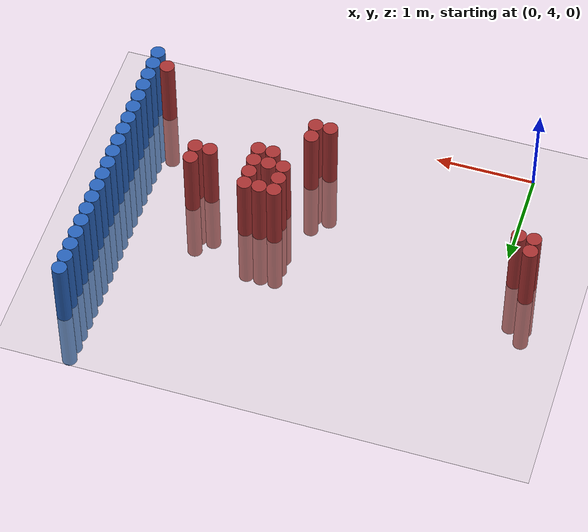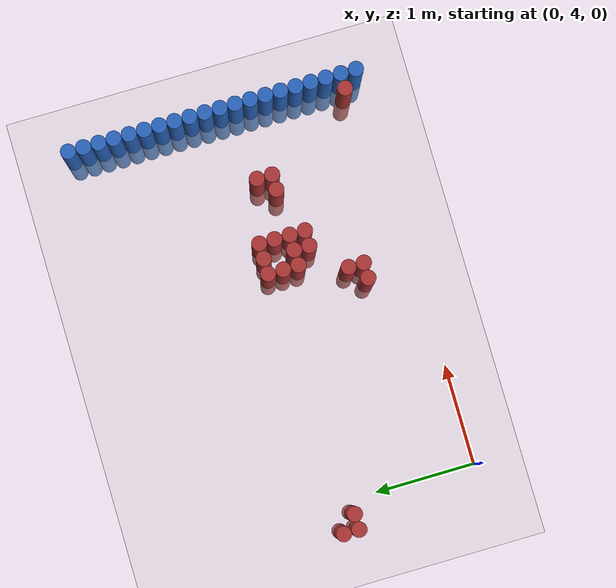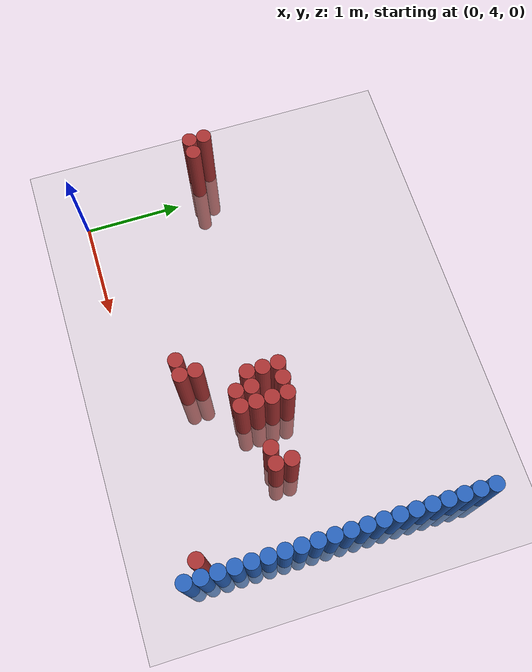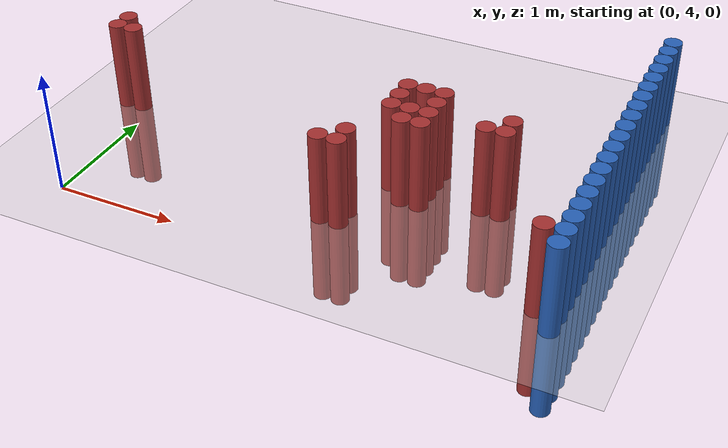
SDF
<sdf version="1.6">
 <world name="default">
  <model name="ground_plane">
   <static>1</static>
   <link name="link">
    <collision name="collision">
     <geometry><plane><normal>0 0 1</normal><size>100 100</size></plane></geometry>
     <surface><friction><ode><mu>100</mu><mu2>50</mu2></ode></friction></surface>
    </collision>
    <visual name="visual">
     <cast_shadows>0</cast_shadows>
     <geometry><plane><normal>0 0 1</normal><size>100 100</size></plane></geometry>
     <material>
      <script><uri>file://media/materials/scripts/gazebo.material</uri><name>Gazebo/Grey</name></script>
     </material>
    </visual>
   </link>
  </model>
  <model name="unit_cylinder_168">
   <static>1</static>
   <pose>3.925000 4.075000 0.000000 0.000000 0.000000 0.000000</pose>
   <link name="link">
    <inertial>
     <mass>1</mass>
     <inertia><ixx>0.145833</ixx><ixy>0</ixy><ixz>0</ixz><iyy>0.145833</iyy><iyz>0</iyz><izz>0.125</izz></inertia>
    </inertial>
    <collision name="collision">
     <geometry><cylinder><radius>0.075000</radius><length>1.5</length></cylinder></geometry>
    </collision>
    <visual name="visual">
     <geometry><cylinder><radius>0.075000</radius><length>1.5</length></cylinder></geometry>
     <material>
      <ambient>0.152000 0.379000 0.720000 1</ambient>
      <diffuse>0.152000 0.379000 0.720000 1</diffuse>
     </material>
     <material>
      <script><name>Gazebo/Grey</name><uri>file://media/materials/scripts/gazebo.material</uri></script>
     </material>
    </visual>
   </link>
  </model>
  <model name="unit_cylinder_170">
   <static>1</static>
   <pose>3.925000 4.225000 0.000000 0.000000 0.000000 0.000000</pose>
   <link name="link">
    <inertial>
     <mass>1</mass>
     <inertia><ixx>0.145833</ixx><ixy>0</ixy><ixz>0</ixz><iyy>0.145833</iyy><iyz>0</iyz><izz>0.125</izz></inertia>
    </inertial>
    <collision name="collision">
     <geometry><cylinder><radius>0.075000</radius><length>1.5</length></cylinder></geometry>
    </collision>
    <visual name="visual">
     <geometry><cylinder><radius>0.075000</radius><length>1.5</length></cylinder></geometry>
     <material>
      <ambient>0.152000 0.379000 0.720000 1</ambient>
      <diffuse>0.152000 0.379000 0.720000 1</diffuse>
     </material>
     <material>
      <script><name>Gazebo/Grey</name><uri>file://media/materials/scripts/gazebo.material</uri></script>
     </material>
    </visual>
   </link>
  </model>
  <model name="unit_cylinder_172">
   <static>1</static>
   <pose>3.925000 4.375000 0.000000 0.000000 0.000000 0.000000</pose>
   <link name="link">
    <inertial>
     <mass>1</mass>
     <inertia><ixx>0.145833</ixx><ixy>0</ixy><ixz>0</ixz><iyy>0.145833</iyy><iyz>0</iyz><izz>0.125</izz></inertia>
    </inertial>
    <collision name="collision">
     <geometry><cylinder><radius>0.075000</radius><length>1.5</length></cylinder></geometry>
    </collision>
    <visual name="visual">
     <geometry><cylinder><radius>0.075000</radius><length>1.5</length></cylinder></geometry>
     <material>
      <ambient>0.152000 0.379000 0.720000 1</ambient>
      <diffuse>0.152000 0.379000 0.720000 1</diffuse>
     </material>
     <material>
      <script><name>Gazebo/Grey</name><uri>file://media/materials/scripts/gazebo.material</uri></script>
     </material>
    </visual>
   </link>
  </model>
  <model name="unit_cylinder_174">
   <static>1</static>
   <pose>3.925000 4.525000 0.000000 0.000000 0.000000 0.000000</pose>
   <link name="link">
    <inertial>
     <mass>1</mass>
     <inertia><ixx>0.145833</ixx><ixy>0</ixy><ixz>0</ixz><iyy>0.145833</iyy><iyz>0</iyz><izz>0.125</izz></inertia>
    </inertial>
    <collision name="collision">
     <geometry><cylinder><radius>0.075000</radius><length>1.5</length></cylinder></geometry>
    </collision>
    <visual name="visual">
     <geometry><cylinder><radius>0.075000</radius><length>1.5</length></cylinder></geometry>
     <material>
      <ambient>0.152000 0.379000 0.720000 1</ambient>
      <diffuse>0.152000 0.379000 0.720000 1</diffuse>
     </material>
     <material>
      <script><name>Gazebo/Grey</name><uri>file://media/materials/scripts/gazebo.material</uri></script>
     </material>
    </visual>
   </link>
  </model>
  <model name="unit_cylinder_176">
   <static>1</static>
   <pose>3.925000 4.675000 0.000000 0.000000 0.000000 0.000000</pose>
   <link name="link">
    <inertial>
     <mass>1</mass>
     <inertia><ixx>0.145833</ixx><ixy>0</ixy><ixz>0</ixz><iyy>0.145833</iyy><iyz>0</iyz><izz>0.125</izz></inertia>
    </inertial>
    <collision name="collision">
     <geometry><cylinder><radius>0.075000</radius><length>1.5</length></cylinder></geometry>
    </collision>
    <visual name="visual">
     <geometry><cylinder><radius>0.075000</radius><length>1.5</length></cylinder></geometry>
     <material>
      <ambient>0.152000 0.379000 0.720000 1</ambient>
      <diffuse>0.152000 0.379000 0.720000 1</diffuse>
     </material>
     <material>
      <script><name>Gazebo/Grey</name><uri>file://media/materials/scripts/gazebo.material</uri></script>
     </material>
    </visual>
   </link>
  </model>
  <model name="unit_cylinder_178">
   <static>1</static>
   <pose>3.925000 4.825000 0.000000 0.000000 0.000000 0.000000</pose>
   <link name="link">
    <inertial>
     <mass>1</mass>
     <inertia><ixx>0.145833</ixx><ixy>0</ixy><ixz>0</ixz><iyy>0.145833</iyy><iyz>0</iyz><izz>0.125</izz></inertia>
    </inertial>
    <collision name="collision">
     <geometry><cylinder><radius>0.075000</radius><length>1.5</length></cylinder></geometry>
    </collision>
    <visual name="visual">
     <geometry><cylinder><radius>0.075000</radius><length>1.5</length></cylinder></geometry>
     <material>
      <ambient>0.152000 0.379000 0.720000 1</ambient>
      <diffuse>0.152000 0.379000 0.720000 1</diffuse>
     </material>
     <material>
      <script><name>Gazebo/Grey</name><uri>file://media/materials/scripts/gazebo.material</uri></script>
     </material>
    </visual>
   </link>
  </model>
  <model name="unit_cylinder_180">
   <static>1</static>
   <pose>3.925000 4.975000 0.000000 0.000000 0.000000 0.000000</pose>
   <link name="link">
    <inertial>
     <mass>1</mass>
     <inertia><ixx>0.145833</ixx><ixy>0</ixy><ixz>0</ixz><iyy>0.145833</iyy><iyz>0</iyz><izz>0.125</izz></inertia>
    </inertial>
    <collision name="collision">
     <geometry><cylinder><radius>0.075000</radius><length>1.5</length></cylinder></geometry>
    </collision>
    <visual name="visual">
     <geometry><cylinder><radius>0.075000</radius><length>1.5</length></cylinder></geometry>
     <material>
      <ambient>0.152000 0.379000 0.720000 1</ambient>
      <diffuse>0.152000 0.379000 0.720000 1</diffuse>
     </material>
     <material>
      <script><name>Gazebo/Grey</name><uri>file://media/materials/scripts/gazebo.material</uri></script>
     </material>
    </visual>
   </link>
  </model>
  <model name="unit_cylinder_182">
   <static>1</static>
   <pose>3.925000 5.125000 0.000000 0.000000 0.000000 0.000000</pose>
   <link name="link">
    <inertial>
     <mass>1</mass>
     <inertia><ixx>0.145833</ixx><ixy>0</ixy><ixz>0</ixz><iyy>0.145833</iyy><iyz>0</iyz><izz>0.125</izz></inertia>
    </inertial>
    <collision name="collision">
     <geometry><cylinder><radius>0.075000</radius><length>1.5</length></cylinder></geometry>
    </collision>
    <visual name="visual">
     <geometry><cylinder><radius>0.075000</radius><length>1.5</length></cylinder></geometry>
     <material>
      <ambient>0.152000 0.379000 0.720000 1</ambient>
      <diffuse>0.152000 0.379000 0.720000 1</diffuse>
     </material>
     <material>
      <script><name>Gazebo/Grey</name><uri>file://media/materials/scripts/gazebo.material</uri></script>
     </material>
    </visual>
   </link>
  </model>
  <model name="unit_cylinder_184">
   <static>1</static>
   <pose>3.925000 5.275000 0.000000 0.000000 0.000000 0.000000</pose>
   <link name="link">
    <inertial>
     <mass>1</mass>
     <inertia><ixx>0.145833</ixx><ixy>0</ixy><ixz>0</ixz><iyy>0.145833</iyy><iyz>0</iyz><izz>0.125</izz></inertia>
    </inertial>
    <collision name="collision">
     <geometry><cylinder><radius>0.075000</radius><length>1.5</length></cylinder></geometry>
    </collision>
    <visual name="visual">
     <geometry><cylinder><radius>0.075000</radius><length>1.5</length></cylinder></geometry>
     <material>
      <ambient>0.152000 0.379000 0.720000 1</ambient>
      <diffuse>0.152000 0.379000 0.720000 1</diffuse>
     </material>
     <material>
      <script><name>Gazebo/Grey</name><uri>file://media/materials/scripts/gazebo.material</uri></script>
     </material>
    </visual>
   </link>
  </model>
  <model name="unit_cylinder_186">
   <static>1</static>
   <pose>3.925000 5.425000 0.000000 0.000000 0.000000 0.000000</pose>
   <link name="link">
    <inertial>
     <mass>1</mass>
     <inertia><ixx>0.145833</ixx><ixy>0</ixy><ixz>0</ixz><iyy>0.145833</iyy><iyz>0</iyz><izz>0.125</izz></inertia>
    </inertial>
    <collision name="collision">
     <geometry><cylinder><radius>0.075000</radius><length>1.5</length></cylinder></geometry>
    </collision>
    <visual name="visual">
     <geometry><cylinder><radius>0.075000</radius><length>1.5</length></cylinder></geometry>
     <material>
      <ambient>0.152000 0.379000 0.720000 1</ambient>
      <diffuse>0.152000 0.379000 0.720000 1</diffuse>
     </material>
     <material>
      <script><name>Gazebo/Grey</name><uri>file://media/materials/scripts/gazebo.material</uri></script>
     </material>
    </visual>
   </link>
  </model>
  <model name="unit_cylinder_188">
   <static>1</static>
   <pose>3.925000 5.575000 0.000000 0.000000 0.000000 0.000000</pose>
   <link name="link">
    <inertial>
     <mass>1</mass>
     <inertia><ixx>0.145833</ixx><ixy>0</ixy><ixz>0</ixz><iyy>0.145833</iyy><iyz>0</iyz><izz>0.125</izz></inertia>
    </inertial>
    <collision name="collision">
     <geometry><cylinder><radius>0.075000</radius><length>1.5</length></cylinder></geometry>
    </collision>
    <visual name="visual">
     <geometry><cylinder><radius>0.075000</radius><length>1.5</length></cylinder></geometry>
     <material>
      <ambient>0.152000 0.379000 0.720000 1</ambient>
      <diffuse>0.152000 0.379000 0.720000 1</diffuse>
     </material>
     <material>
      <script><name>Gazebo/Grey</name><uri>file://media/materials/scripts/gazebo.material</uri></script>
     </material>
    </visual>
   </link>
  </model>
  <model name="unit_cylinder_190">
   <static>1</static>
   <pose>3.925000 5.725000 0.000000 0.000000 0.000000 0.000000</pose>
   <link name="link">
    <inertial>
     <mass>1</mass>
     <inertia><ixx>0.145833</ixx><ixy>0</ixy><ixz>0</ixz><iyy>0.145833</iyy><iyz>0</iyz><izz>0.125</izz></inertia>
    </inertial>
    <collision name="collision">
     <geometry><cylinder><radius>0.075000</radius><length>1.5</length></cylinder></geometry>
    </collision>
    <visual name="visual">
     <geometry><cylinder><radius>0.075000</radius><length>1.5</length></cylinder></geometry>
     <material>
      <ambient>0.152000 0.379000 0.720000 1</ambient>
      <diffuse>0.152000 0.379000 0.720000 1</diffuse>
     </material>
     <material>
      <script><name>Gazebo/Grey</name><uri>file://media/materials/scripts/gazebo.material</uri></script>
     </material>
    </visual>
   </link>
  </model>
  <model name="unit_cylinder_192">
   <static>1</static>
   <pose>3.925000 5.875000 0.000000 0.000000 0.000000 0.000000</pose>
   <link name="link">
    <inertial>
     <mass>1</mass>
     <inertia><ixx>0.145833</ixx><ixy>0</ixy><ixz>0</ixz><iyy>0.145833</iyy><iyz>0</iyz><izz>0.125</izz></inertia>
    </inertial>
    <collision name="collision">
     <geometry><cylinder><radius>0.075000</radius><length>1.5</length></cylinder></geometry>
    </collision>
    <visual name="visual">
     <geometry><cylinder><radius>0.075000</radius><length>1.5</length></cylinder></geometry>
     <material>
      <ambient>0.152000 0.379000 0.720000 1</ambient>
      <diffuse>0.152000 0.379000 0.720000 1</diffuse>
     </material>
     <material>
      <script><name>Gazebo/Grey</name><uri>file://media/materials/scripts/gazebo.material</uri></script>
     </material>
    </visual>
   </link>
  </model>
  <model name="unit_cylinder_194">
   <static>1</static>
   <pose>3.925000 6.025000 0.000000 0.000000 0.000000 0.000000</pose>
   <link name="link">
    <inertial>
     <mass>1</mass>
     <inertia><ixx>0.145833</ixx><ixy>0</ixy><ixz>0</ixz><iyy>0.145833</iyy><iyz>0</iyz><izz>0.125</izz></inertia>
    </inertial>
    <collision name="collision">
     <geometry><cylinder><radius>0.075000</radius><length>1.5</length></cylinder></geometry>
    </collision>
    <visual name="visual">
     <geometry><cylinder><radius>0.075000</radius><length>1.5</length></cylinder></geometry>
     <material>
      <ambient>0.152000 0.379000 0.720000 1</ambient>
      <diffuse>0.152000 0.379000 0.720000 1</diffuse>
     </material>
     <material>
      <script><name>Gazebo/Grey</name><uri>file://media/materials/scripts/gazebo.material</uri></script>
     </material>
    </visual>
   </link>
  </model>
  <model name="unit_cylinder_196">
   <static>1</static>
   <pose>3.925000 6.175000 0.000000 0.000000 0.000000 0.000000</pose>
   <link name="link">
    <inertial>
     <mass>1</mass>
     <inertia><ixx>0.145833</ixx><ixy>0</ixy><ixz>0</ixz><iyy>0.145833</iyy><iyz>0</iyz><izz>0.125</izz></inertia>
    </inertial>
    <collision name="collision">
     <geometry><cylinder><radius>0.075000</radius><length>1.5</length></cylinder></geometry>
    </collision>
    <visual name="visual">
     <geometry><cylinder><radius>0.075000</radius><length>1.5</length></cylinder></geometry>
     <material>
      <ambient>0.152000 0.379000 0.720000 1</ambient>
      <diffuse>0.152000 0.379000 0.720000 1</diffuse>
     </material>
     <material>
      <script><name>Gazebo/Grey</name><uri>file://media/materials/scripts/gazebo.material</uri></script>
     </material>
    </visual>
   </link>
  </model>
  <model name="unit_cylinder_198">
   <static>1</static>
   <pose>3.925000 6.325000 0.000000 0.000000 0.000000 0.000000</pose>
   <link name="link">
    <inertial>
     <mass>1</mass>
     <inertia><ixx>0.145833</ixx><ixy>0</ixy><ixz>0</ixz><iyy>0.145833</iyy><iyz>0</iyz><izz>0.125</izz></inertia>
    </inertial>
    <collision name="collision">
     <geometry><cylinder><radius>0.075000</radius><length>1.5</length></cylinder></geometry>
    </collision>
    <visual name="visual">
     <geometry><cylinder><radius>0.075000</radius><length>1.5</length></cylinder></geometry>
     <material>
      <ambient>0.152000 0.379000 0.720000 1</ambient>
      <diffuse>0.152000 0.379000 0.720000 1</diffuse>
     </material>
     <material>
      <script><name>Gazebo/Grey</name><uri>file://media/materials/scripts/gazebo.material</uri></script>
     </material>
    </visual>
   </link>
  </model>
  <model name="unit_cylinder_200">
   <static>1</static>
   <pose>3.925000 6.475000 0.000000 0.000000 0.000000 0.000000</pose>
   <link name="link">
    <inertial>
     <mass>1</mass>
     <inertia><ixx>0.145833</ixx><ixy>0</ixy><ixz>0</ixz><iyy>0.145833</iyy><iyz>0</iyz><izz>0.125</izz></inertia>
    </inertial>
    <collision name="collision">
     <geometry><cylinder><radius>0.075000</radius><length>1.5</length></cylinder></geometry>
    </collision>
    <visual name="visual">
     <geometry><cylinder><radius>0.075000</radius><length>1.5</length></cylinder></geometry>
     <material>
      <ambient>0.152000 0.379000 0.720000 1</ambient>
      <diffuse>0.152000 0.379000 0.720000 1</diffuse>
     </material>
     <material>
      <script><name>Gazebo/Grey</name><uri>file://media/materials/scripts/gazebo.material</uri></script>
     </material>
    </visual>
   </link>
  </model>
  <model name="unit_cylinder_202">
   <static>1</static>
   <pose>3.925000 6.625000 0.000000 0.000000 0.000000 0.000000</pose>
   <link name="link">
    <inertial>
     <mass>1</mass>
     <inertia><ixx>0.145833</ixx><ixy>0</ixy><ixz>0</ixz><iyy>0.145833</iyy><iyz>0</iyz><izz>0.125</izz></inertia>
    </inertial>
    <collision name="collision">
     <geometry><cylinder><radius>0.075000</radius><length>1.5</length></cylinder></geometry>
    </collision>
    <visual name="visual">
     <geometry><cylinder><radius>0.075000</radius><length>1.5</length></cylinder></geometry>
     <material>
      <ambient>0.152000 0.379000 0.720000 1</ambient>
      <diffuse>0.152000 0.379000 0.720000 1</diffuse>
     </material>
     <material>
      <script><name>Gazebo/Grey</name><uri>file://media/materials/scripts/gazebo.material</uri></script>
     </material>
    </visual>
   </link>
  </model>
  <model name="unit_cylinder_204">
   <static>1</static>
   <pose>3.925000 6.775000 0.000000 0.000000 0.000000 0.000000</pose>
   <link name="link">
    <inertial>
     <mass>1</mass>
     <inertia><ixx>0.145833</ixx><ixy>0</ixy><ixz>0</ixz><iyy>0.145833</iyy><iyz>0</iyz><izz>0.125</izz></inertia>
    </inertial>
    <collision name="collision">
     <geometry><cylinder><radius>0.075000</radius><length>1.5</length></cylinder></geometry>
    </collision>
    <visual name="visual">
     <geometry><cylinder><radius>0.075000</radius><length>1.5</length></cylinder></geometry>
     <material>
      <ambient>0.152000 0.379000 0.720000 1</ambient>
      <diffuse>0.152000 0.379000 0.720000 1</diffuse>
     </material>
     <material>
      <script><name>Gazebo/Grey</name><uri>file://media/materials/scripts/gazebo.material</uri></script>
     </material>
    </visual>
   </link>
  </model>
  <model name="unit_cylinder_206">
   <static>1</static>
   <pose>3.925000 6.925000 0.000000 0.000000 0.000000 0.000000</pose>
   <link name="link">
    <inertial>
     <mass>1</mass>
     <inertia><ixx>0.145833</ixx><ixy>0</ixy><ixz>0</ixz><iyy>0.145833</iyy><iyz>0</iyz><izz>0.125</izz></inertia>
    </inertial>
    <collision name="collision">
     <geometry><cylinder><radius>0.075000</radius><length>1.5</length></cylinder></geometry>
    </collision>
    <visual name="visual">
     <geometry><cylinder><radius>0.075000</radius><length>1.5</length></cylinder></geometry>
     <material>
      <ambient>0.152000 0.379000 0.720000 1</ambient>
      <diffuse>0.152000 0.379000 0.720000 1</diffuse>
     </material>
     <material>
      <script><name>Gazebo/Grey</name><uri>file://media/materials/scripts/gazebo.material</uri></script>
     </material>
    </visual>
   </link>
  </model>
  <model name="unit_cylinder_386">
   <static>1</static>
   <pose>-0.275000 5.275000 0.000000 0.000000 0.000000 0.000000</pose>
   <link name="link">
    <inertial>
     <mass>1</mass>
     <inertia><ixx>0.145833</ixx><ixy>0</ixy><ixz>0</ixz><iyy>0.145833</iyy><iyz>0</iyz><izz>0.125</izz></inertia>
    </inertial>
    <collision name="collision">
     <geometry><cylinder><radius>0.075000</radius><length>1.5</length></cylinder></geometry>
    </collision>
    <visual name="visual">
     <geometry><cylinder><radius>0.075000</radius><length>1.5</length></cylinder></geometry>
     <material>
      <ambient>0.648000 0.192000 0.192000 1</ambient>
      <diffuse>0.648000 0.192000 0.192000 1</diffuse>
     </material>
     <material>
      <script><name>Gazebo/Grey</name><uri>file://media/materials/scripts/gazebo.material</uri></script>
     </material>
    </visual>
   </link>
  </model>
  <model name="unit_cylinder_387">
   <static>1</static>
   <pose>-0.275000 5.425000 0.000000 0.000000 0.000000 0.000000</pose>
   <link name="link">
    <inertial>
     <mass>1</mass>
     <inertia><ixx>0.145833</ixx><ixy>0</ixy><ixz>0</ixz><iyy>0.145833</iyy><iyz>0</iyz><izz>0.125</izz></inertia>
    </inertial>
    <collision name="collision">
     <geometry><cylinder><radius>0.075000</radius><length>1.5</length></cylinder></geometry>
    </collision>
    <visual name="visual">
     <geometry><cylinder><radius>0.075000</radius><length>1.5</length></cylinder></geometry>
     <material>
      <ambient>0.648000 0.192000 0.192000 1</ambient>
      <diffuse>0.648000 0.192000 0.192000 1</diffuse>
     </material>
     <material>
      <script><name>Gazebo/Grey</name><uri>file://media/materials/scripts/gazebo.material</uri></script>
     </material>
    </visual>
   </link>
  </model>
  <model name="unit_cylinder_393">
   <static>1</static>
   <pose>-0.125000 5.275000 0.000000 0.000000 0.000000 0.000000</pose>
   <link name="link">
    <inertial>
     <mass>1</mass>
     <inertia><ixx>0.145833</ixx><ixy>0</ixy><ixz>0</ixz><iyy>0.145833</iyy><iyz>0</iyz><izz>0.125</izz></inertia>
    </inertial>
    <collision name="collision">
     <geometry><cylinder><radius>0.075000</radius><length>1.5</length></cylinder></geometry>
    </collision>
    <visual name="visual">
     <geometry><cylinder><radius>0.075000</radius><length>1.5</length></cylinder></geometry>
     <material>
      <ambient>0.648000 0.192000 0.192000 1</ambient>
      <diffuse>0.648000 0.192000 0.192000 1</diffuse>
     </material>
     <material>
      <script><name>Gazebo/Grey</name><uri>file://media/materials/scripts/gazebo.material</uri></script>
     </material>
    </visual>
   </link>
  </model>
  <model name="unit_cylinder_430">
   <static>1</static>
   <pose>1.975000 4.525000 0.000000 0.000000 0.000000 0.000000</pose>
   <link name="link">
    <inertial>
     <mass>1</mass>
     <inertia><ixx>0.145833</ixx><ixy>0</ixy><ixz>0</ixz><iyy>0.145833</iyy><iyz>0</iyz><izz>0.125</izz></inertia>
    </inertial>
    <collision name="collision">
     <geometry><cylinder><radius>0.075000</radius><length>1.5</length></cylinder></geometry>
    </collision>
    <visual name="visual">
     <geometry><cylinder><radius>0.075000</radius><length>1.5</length></cylinder></geometry>
     <material>
      <ambient>0.648000 0.192000 0.192000 1</ambient>
      <diffuse>0.648000 0.192000 0.192000 1</diffuse>
     </material>
     <material>
      <script><name>Gazebo/Grey</name><uri>file://media/materials/scripts/gazebo.material</uri></script>
     </material>
    </visual>
   </link>
  </model>
  <model name="unit_cylinder_433">
   <static>1</static>
   <pose>2.125000 4.525000 0.000000 0.000000 0.000000 0.000000</pose>
   <link name="link">
    <inertial>
     <mass>1</mass>
     <inertia><ixx>0.145833</ixx><ixy>0</ixy><ixz>0</ixz><iyy>0.145833</iyy><iyz>0</iyz><izz>0.125</izz></inertia>
    </inertial>
    <collision name="collision">
     <geometry><cylinder><radius>0.075000</radius><length>1.5</length></cylinder></geometry>
    </collision>
    <visual name="visual">
     <geometry><cylinder><radius>0.075000</radius><length>1.5</length></cylinder></geometry>
     <material>
      <ambient>0.648000 0.192000 0.192000 1</ambient>
      <diffuse>0.648000 0.192000 0.192000 1</diffuse>
     </material>
     <material>
      <script><name>Gazebo/Grey</name><uri>file://media/materials/scripts/gazebo.material</uri></script>
     </material>
    </visual>
   </link>
  </model>
  <model name="unit_cylinder_434">
   <static>1</static>
   <pose>2.125000 4.675000 0.000000 0.000000 0.000000 0.000000</pose>
   <link name="link">
    <inertial>
     <mass>1</mass>
     <inertia><ixx>0.145833</ixx><ixy>0</ixy><ixz>0</ixz><iyy>0.145833</iyy><iyz>0</iyz><izz>0.125</izz></inertia>
    </inertial>
    <collision name="collision">
     <geometry><cylinder><radius>0.075000</radius><length>1.5</length></cylinder></geometry>
    </collision>
    <visual name="visual">
     <geometry><cylinder><radius>0.075000</radius><length>1.5</length></cylinder></geometry>
     <material>
      <ambient>0.648000 0.192000 0.192000 1</ambient>
      <diffuse>0.648000 0.192000 0.192000 1</diffuse>
     </material>
     <material>
      <script><name>Gazebo/Grey</name><uri>file://media/materials/scripts/gazebo.material</uri></script>
     </material>
    </visual>
   </link>
  </model>
  <model name="unit_cylinder_435">
   <static>1</static>
   <pose>2.275000 5.125000 0.000000 0.000000 0.000000 0.000000</pose>
   <link name="link">
    <inertial>
     <mass>1</mass>
     <inertia><ixx>0.145833</ixx><ixy>0</ixy><ixz>0</ixz><iyy>0.145833</iyy><iyz>0</iyz><izz>0.125</izz></inertia>
    </inertial>
    <collision name="collision">
     <geometry><cylinder><radius>0.075000</radius><length>1.5</length></cylinder></geometry>
    </collision>
    <visual name="visual">
     <geometry><cylinder><radius>0.075000</radius><length>1.5</length></cylinder></geometry>
     <material>
      <ambient>0.648000 0.192000 0.192000 1</ambient>
      <diffuse>0.648000 0.192000 0.192000 1</diffuse>
     </material>
     <material>
      <script><name>Gazebo/Grey</name><uri>file://media/materials/scripts/gazebo.material</uri></script>
     </material>
    </visual>
   </link>
  </model>
  <model name="unit_cylinder_436">
   <static>1</static>
   <pose>2.275000 5.275000 0.000000 0.000000 0.000000 0.000000</pose>
   <link name="link">
    <inertial>
     <mass>1</mass>
     <inertia><ixx>0.145833</ixx><ixy>0</ixy><ixz>0</ixz><iyy>0.145833</iyy><iyz>0</iyz><izz>0.125</izz></inertia>
    </inertial>
    <collision name="collision">
     <geometry><cylinder><radius>0.075000</radius><length>1.5</length></cylinder></geometry>
    </collision>
    <visual name="visual">
     <geometry><cylinder><radius>0.075000</radius><length>1.5</length></cylinder></geometry>
     <material>
      <ambient>0.648000 0.192000 0.192000 1</ambient>
      <diffuse>0.648000 0.192000 0.192000 1</diffuse>
     </material>
     <material>
      <script><name>Gazebo/Grey</name><uri>file://media/materials/scripts/gazebo.material</uri></script>
     </material>
    </visual>
   </link>
  </model>
  <model name="unit_cylinder_437">
   <static>1</static>
   <pose>2.275000 5.425000 0.000000 0.000000 0.000000 0.000000</pose>
   <link name="link">
    <inertial>
     <mass>1</mass>
     <inertia><ixx>0.145833</ixx><ixy>0</ixy><ixz>0</ixz><iyy>0.145833</iyy><iyz>0</iyz><izz>0.125</izz></inertia>
    </inertial>
    <collision name="collision">
     <geometry><cylinder><radius>0.075000</radius><length>1.5</length></cylinder></geometry>
    </collision>
    <visual name="visual">
     <geometry><cylinder><radius>0.075000</radius><length>1.5</length></cylinder></geometry>
     <material>
      <ambient>0.648000 0.192000 0.192000 1</ambient>
      <diffuse>0.648000 0.192000 0.192000 1</diffuse>
     </material>
     <material>
      <script><name>Gazebo/Grey</name><uri>file://media/materials/scripts/gazebo.material</uri></script>
     </material>
    </visual>
   </link>
  </model>
  <model name="unit_cylinder_438">
   <static>1</static>
   <pose>2.425000 4.975000 0.000000 0.000000 0.000000 0.000000</pose>
   <link name="link">
    <inertial>
     <mass>1</mass>
     <inertia><ixx>0.145833</ixx><ixy>0</ixy><ixz>0</ixz><iyy>0.145833</iyy><iyz>0</iyz><izz>0.125</izz></inertia>
    </inertial>
    <collision name="collision">
     <geometry><cylinder><radius>0.075000</radius><length>1.5</length></cylinder></geometry>
    </collision>
    <visual name="visual">
     <geometry><cylinder><radius>0.075000</radius><length>1.5</length></cylinder></geometry>
     <material>
      <ambient>0.648000 0.192000 0.192000 1</ambient>
      <diffuse>0.648000 0.192000 0.192000 1</diffuse>
     </material>
     <material>
      <script><name>Gazebo/Grey</name><uri>file://media/materials/scripts/gazebo.material</uri></script>
     </material>
    </visual>
   </link>
  </model>
  <model name="unit_cylinder_439">
   <static>1</static>
   <pose>2.425000 5.125000 0.000000 0.000000 0.000000 0.000000</pose>
   <link name="link">
    <inertial>
     <mass>1</mass>
     <inertia><ixx>0.145833</ixx><ixy>0</ixy><ixz>0</ixz><iyy>0.145833</iyy><iyz>0</iyz><izz>0.125</izz></inertia>
    </inertial>
    <collision name="collision">
     <geometry><cylinder><radius>0.075000</radius><length>1.5</length></cylinder></geometry>
    </collision>
    <visual name="visual">
     <geometry><cylinder><radius>0.075000</radius><length>1.5</length></cylinder></geometry>
     <material>
      <ambient>0.648000 0.192000 0.192000 1</ambient>
      <diffuse>0.648000 0.192000 0.192000 1</diffuse>
     </material>
     <material>
      <script><name>Gazebo/Grey</name><uri>file://media/materials/scripts/gazebo.material</uri></script>
     </material>
    </visual>
   </link>
  </model>
  <model name="unit_cylinder_440">
   <static>1</static>
   <pose>2.425000 5.425000 0.000000 0.000000 0.000000 0.000000</pose>
   <link name="link">
    <inertial>
     <mass>1</mass>
     <inertia><ixx>0.145833</ixx><ixy>0</ixy><ixz>0</ixz><iyy>0.145833</iyy><iyz>0</iyz><izz>0.125</izz></inertia>
    </inertial>
    <collision name="collision">
     <geometry><cylinder><radius>0.075000</radius><length>1.5</length></cylinder></geometry>
    </collision>
    <visual name="visual">
     <geometry><cylinder><radius>0.075000</radius><length>1.5</length></cylinder></geometry>
     <material>
      <ambient>0.648000 0.192000 0.192000 1</ambient>
      <diffuse>0.648000 0.192000 0.192000 1</diffuse>
     </material>
     <material>
      <script><name>Gazebo/Grey</name><uri>file://media/materials/scripts/gazebo.material</uri></script>
     </material>
    </visual>
   </link>
  </model>
  <model name="unit_cylinder_443">
   <static>1</static>
   <pose>2.575000 4.975000 0.000000 0.000000 0.000000 0.000000</pose>
   <link name="link">
    <inertial>
     <mass>1</mass>
     <inertia><ixx>0.145833</ixx><ixy>0</ixy><ixz>0</ixz><iyy>0.145833</iyy><iyz>0</iyz><izz>0.125</izz></inertia>
    </inertial>
    <collision name="collision">
     <geometry><cylinder><radius>0.075000</radius><length>1.5</length></cylinder></geometry>
    </collision>
    <visual name="visual">
     <geometry><cylinder><radius>0.075000</radius><length>1.5</length></cylinder></geometry>
     <material>
      <ambient>0.648000 0.192000 0.192000 1</ambient>
      <diffuse>0.648000 0.192000 0.192000 1</diffuse>
     </material>
     <material>
      <script><name>Gazebo/Grey</name><uri>file://media/materials/scripts/gazebo.material</uri></script>
     </material>
    </visual>
   </link>
  </model>
  <model name="unit_cylinder_444">
   <static>1</static>
   <pose>2.575000 5.125000 0.000000 0.000000 0.000000 0.000000</pose>
   <link name="link">
    <inertial>
     <mass>1</mass>
     <inertia><ixx>0.145833</ixx><ixy>0</ixy><ixz>0</ixz><iyy>0.145833</iyy><iyz>0</iyz><izz>0.125</izz></inertia>
    </inertial>
    <collision name="collision">
     <geometry><cylinder><radius>0.075000</radius><length>1.5</length></cylinder></geometry>
    </collision>
    <visual name="visual">
     <geometry><cylinder><radius>0.075000</radius><length>1.5</length></cylinder></geometry>
     <material>
      <ambient>0.648000 0.192000 0.192000 1</ambient>
      <diffuse>0.648000 0.192000 0.192000 1</diffuse>
     </material>
     <material>
      <script><name>Gazebo/Grey</name><uri>file://media/materials/scripts/gazebo.material</uri></script>
     </material>
    </visual>
   </link>
  </model>
  <model name="unit_cylinder_445">
   <static>1</static>
   <pose>2.575000 5.275000 0.000000 0.000000 0.000000 0.000000</pose>
   <link name="link">
    <inertial>
     <mass>1</mass>
     <inertia><ixx>0.145833</ixx><ixy>0</ixy><ixz>0</ixz><iyy>0.145833</iyy><iyz>0</iyz><izz>0.125</izz></inertia>
    </inertial>
    <collision name="collision">
     <geometry><cylinder><radius>0.075000</radius><length>1.5</length></cylinder></geometry>
    </collision>
    <visual name="visual">
     <geometry><cylinder><radius>0.075000</radius><length>1.5</length></cylinder></geometry>
     <material>
      <ambient>0.648000 0.192000 0.192000 1</ambient>
      <diffuse>0.648000 0.192000 0.192000 1</diffuse>
     </material>
     <material>
      <script><name>Gazebo/Grey</name><uri>file://media/materials/scripts/gazebo.material</uri></script>
     </material>
    </visual>
   </link>
  </model>
  <model name="unit_cylinder_446">
   <static>1</static>
   <pose>2.575000 5.425000 0.000000 0.000000 0.000000 0.000000</pose>
   <link name="link">
    <inertial>
     <mass>1</mass>
     <inertia><ixx>0.145833</ixx><ixy>0</ixy><ixz>0</ixz><iyy>0.145833</iyy><iyz>0</iyz><izz>0.125</izz></inertia>
    </inertial>
    <collision name="collision">
     <geometry><cylinder><radius>0.075000</radius><length>1.5</length></cylinder></geometry>
    </collision>
    <visual name="visual">
     <geometry><cylinder><radius>0.075000</radius><length>1.5</length></cylinder></geometry>
     <material>
      <ambient>0.648000 0.192000 0.192000 1</ambient>
      <diffuse>0.648000 0.192000 0.192000 1</diffuse>
     </material>
     <material>
      <script><name>Gazebo/Grey</name><uri>file://media/materials/scripts/gazebo.material</uri></script>
     </material>
    </visual>
   </link>
  </model>
  <model name="unit_cylinder_464">
   <static>1</static>
   <pose>3.025000 5.125000 0.000000 0.000000 0.000000 0.000000</pose>
   <link name="link">
    <inertial>
     <mass>1</mass>
     <inertia><ixx>0.145833</ixx><ixy>0</ixy><ixz>0</ixz><iyy>0.145833</iyy><iyz>0</iyz><izz>0.125</izz></inertia>
    </inertial>
    <collision name="collision">
     <geometry><cylinder><radius>0.075000</radius><length>1.5</length></cylinder></geometry>
    </collision>
    <visual name="visual">
     <geometry><cylinder><radius>0.075000</radius><length>1.5</length></cylinder></geometry>
     <material>
      <ambient>0.648000 0.192000 0.192000 1</ambient>
      <diffuse>0.648000 0.192000 0.192000 1</diffuse>
     </material>
     <material>
      <script><name>Gazebo/Grey</name><uri>file://media/materials/scripts/gazebo.material</uri></script>
     </material>
    </visual>
   </link>
  </model>
  <model name="unit_cylinder_467">
   <static>1</static>
   <pose>3.175000 5.125000 0.000000 0.000000 0.000000 0.000000</pose>
   <link name="link">
    <inertial>
     <mass>1</mass>
     <inertia><ixx>0.145833</ixx><ixy>0</ixy><ixz>0</ixz><iyy>0.145833</iyy><iyz>0</iyz><izz>0.125</izz></inertia>
    </inertial>
    <collision name="collision">
     <geometry><cylinder><radius>0.075000</radius><length>1.5</length></cylinder></geometry>
    </collision>
    <visual name="visual">
     <geometry><cylinder><radius>0.075000</radius><length>1.5</length></cylinder></geometry>
     <material>
      <ambient>0.648000 0.192000 0.192000 1</ambient>
      <diffuse>0.648000 0.192000 0.192000 1</diffuse>
     </material>
     <material>
      <script><name>Gazebo/Grey</name><uri>file://media/materials/scripts/gazebo.material</uri></script>
     </material>
    </visual>
   </link>
  </model>
  <model name="unit_cylinder_468">
   <static>1</static>
   <pose>3.175000 5.275000 0.000000 0.000000 0.000000 0.000000</pose>
   <link name="link">
    <inertial>
     <mass>1</mass>
     <inertia><ixx>0.145833</ixx><ixy>0</ixy><ixz>0</ixz><iyy>0.145833</iyy><iyz>0</iyz><izz>0.125</izz></inertia>
    </inertial>
    <collision name="collision">
     <geometry><cylinder><radius>0.075000</radius><length>1.5</length></cylinder></geometry>
    </collision>
    <visual name="visual">
     <geometry><cylinder><radius>0.075000</radius><length>1.5</length></cylinder></geometry>
     <material>
      <ambient>0.648000 0.192000 0.192000 1</ambient>
      <diffuse>0.648000 0.192000 0.192000 1</diffuse>
     </material>
     <material>
      <script><name>Gazebo/Grey</name><uri>file://media/materials/scripts/gazebo.material</uri></script>
     </material>
    </visual>
   </link>
  </model>
  <model name="unit_cylinder_507">
   <static>1</static>
   <pose>3.775000 4.225000 0.000000 0.000000 0.000000 0.000000</pose>
   <link name="link">
    <inertial>
     <mass>1</mass>
     <inertia><ixx>0.145833</ixx><ixy>0</ixy><ixz>0</ixz><iyy>0.145833</iyy><iyz>0</iyz><izz>0.125</izz></inertia>
    </inertial>
    <collision name="collision">
     <geometry><cylinder><radius>0.075000</radius><length>1.5</length></cylinder></geometry>
    </collision>
    <visual name="visual">
     <geometry><cylinder><radius>0.075000</radius><length>1.5</length></cylinder></geometry>
     <material>
      <ambient>0.648000 0.192000 0.192000 1</ambient>
      <diffuse>0.648000 0.192000 0.192000 1</diffuse>
     </material>
     <material>
      <script><name>Gazebo/Grey</name><uri>file://media/materials/scripts/gazebo.material</uri></script>
     </material>
    </visual>
   </link>
  </model>
  <model name="unit_cylinder_548">
   <static>1</static>
   <pose>3.925000 4.075000 0.000000 0.000000 0.000000 0.000000</pose>
   <link name="link">
    <inertial>
     <mass>1</mass>
     <inertia><ixx>0.145833</ixx><ixy>0</ixy><ixz>0</ixz><iyy>0.145833</iyy><iyz>0</iyz><izz>0.125</izz></inertia>
    </inertial>
    <collision name="collision">
     <geometry><cylinder><radius>0.075000</radius><length>1.5</length></cylinder></geometry>
    </collision>
    <visual name="visual">
     <geometry><cylinder><radius>0.075000</radius><length>1.5</length></cylinder></geometry>
     <material>
      <ambient>0.152000 0.379000 0.720000 1</ambient>
      <diffuse>0.152000 0.379000 0.720000 1</diffuse>
     </material>
     <material>
      <script><name>Gazebo/Grey</name><uri>file://media/materials/scripts/gazebo.material</uri></script>
     </material>
    </visual>
   </link>
  </model>
  <model name="unit_cylinder_549">
   <static>1</static>
   <pose>3.925000 4.225000 0.000000 0.000000 0.000000 0.000000</pose>
   <link name="link">
    <inertial>
     <mass>1</mass>
     <inertia><ixx>0.145833</ixx><ixy>0</ixy><ixz>0</ixz><iyy>0.145833</iyy><iyz>0</iyz><izz>0.125</izz></inertia>
    </inertial>
    <collision name="collision">
     <geometry><cylinder><radius>0.075000</radius><length>1.5</length></cylinder></geometry>
    </collision>
    <visual name="visual">
     <geometry><cylinder><radius>0.075000</radius><length>1.5</length></cylinder></geometry>
     <material>
      <ambient>0.152000 0.379000 0.720000 1</ambient>
      <diffuse>0.152000 0.379000 0.720000 1</diffuse>
     </material>
     <material>
      <script><name>Gazebo/Grey</name><uri>file://media/materials/scripts/gazebo.material</uri></script>
     </material>
    </visual>
   </link>
  </model>
  <model name="unit_cylinder_550">
   <static>1</static>
   <pose>3.925000 4.375000 0.000000 0.000000 0.000000 0.000000</pose>
   <link name="link">
    <inertial>
     <mass>1</mass>
     <inertia><ixx>0.145833</ixx><ixy>0</ixy><ixz>0</ixz><iyy>0.145833</iyy><iyz>0</iyz><izz>0.125</izz></inertia>
    </inertial>
    <collision name="collision">
     <geometry><cylinder><radius>0.075000</radius><length>1.5</length></cylinder></geometry>
    </collision>
    <visual name="visual">
     <geometry><cylinder><radius>0.075000</radius><length>1.5</length></cylinder></geometry>
     <material>
      <ambient>0.152000 0.379000 0.720000 1</ambient>
      <diffuse>0.152000 0.379000 0.720000 1</diffuse>
     </material>
     <material>
      <script><name>Gazebo/Grey</name><uri>file://media/materials/scripts/gazebo.material</uri></script>
     </material>
    </visual>
   </link>
  </model>
  <model name="unit_cylinder_551">
   <static>1</static>
   <pose>3.925000 4.525000 0.000000 0.000000 0.000000 0.000000</pose>
   <link name="link">
    <inertial>
     <mass>1</mass>
     <inertia><ixx>0.145833</ixx><ixy>0</ixy><ixz>0</ixz><iyy>0.145833</iyy><iyz>0</iyz><izz>0.125</izz></inertia>
    </inertial>
    <collision name="collision">
     <geometry><cylinder><radius>0.075000</radius><length>1.5</length></cylinder></geometry>
    </collision>
    <visual name="visual">
     <geometry><cylinder><radius>0.075000</radius><length>1.5</length></cylinder></geometry>
     <material>
      <ambient>0.152000 0.379000 0.720000 1</ambient>
      <diffuse>0.152000 0.379000 0.720000 1</diffuse>
     </material>
     <material>
      <script><name>Gazebo/Grey</name><uri>file://media/materials/scripts/gazebo.material</uri></script>
     </material>
    </visual>
   </link>
  </model>
  <model name="unit_cylinder_552">
   <static>1</static>
   <pose>3.925000 4.675000 0.000000 0.000000 0.000000 0.000000</pose>
   <link name="link">
    <inertial>
     <mass>1</mass>
     <inertia><ixx>0.145833</ixx><ixy>0</ixy><ixz>0</ixz><iyy>0.145833</iyy><iyz>0</iyz><izz>0.125</izz></inertia>
    </inertial>
    <collision name="collision">
     <geometry><cylinder><radius>0.075000</radius><length>1.5</length></cylinder></geometry>
    </collision>
    <visual name="visual">
     <geometry><cylinder><radius>0.075000</radius><length>1.5</length></cylinder></geometry>
     <material>
      <ambient>0.152000 0.379000 0.720000 1</ambient>
      <diffuse>0.152000 0.379000 0.720000 1</diffuse>
     </material>
     <material>
      <script><name>Gazebo/Grey</name><uri>file://media/materials/scripts/gazebo.material</uri></script>
     </material>
    </visual>
   </link>
  </model>
  <model name="unit_cylinder_553">
   <static>1</static>
   <pose>3.925000 4.825000 0.000000 0.000000 0.000000 0.000000</pose>
   <link name="link">
    <inertial>
     <mass>1</mass>
     <inertia><ixx>0.145833</ixx><ixy>0</ixy><ixz>0</ixz><iyy>0.145833</iyy><iyz>0</iyz><izz>0.125</izz></inertia>
    </inertial>
    <collision name="collision">
     <geometry><cylinder><radius>0.075000</radius><length>1.5</length></cylinder></geometry>
    </collision>
    <visual name="visual">
     <geometry><cylinder><radius>0.075000</radius><length>1.5</length></cylinder></geometry>
     <material>
      <ambient>0.152000 0.379000 0.720000 1</ambient>
      <diffuse>0.152000 0.379000 0.720000 1</diffuse>
     </material>
     <material>
      <script><name>Gazebo/Grey</name><uri>file://media/materials/scripts/gazebo.material</uri></script>
     </material>
    </visual>
   </link>
  </model>
  <model name="unit_cylinder_554">
   <static>1</static>
   <pose>3.925000 4.975000 0.000000 0.000000 0.000000 0.000000</pose>
   <link name="link">
    <inertial>
     <mass>1</mass>
     <inertia><ixx>0.145833</ixx><ixy>0</ixy><ixz>0</ixz><iyy>0.145833</iyy><iyz>0</iyz><izz>0.125</izz></inertia>
    </inertial>
    <collision name="collision">
     <geometry><cylinder><radius>0.075000</radius><length>1.5</length></cylinder></geometry>
    </collision>
    <visual name="visual">
     <geometry><cylinder><radius>0.075000</radius><length>1.5</length></cylinder></geometry>
     <material>
      <ambient>0.152000 0.379000 0.720000 1</ambient>
      <diffuse>0.152000 0.379000 0.720000 1</diffuse>
     </material>
     <material>
      <script><name>Gazebo/Grey</name><uri>file://media/materials/scripts/gazebo.material</uri></script>
     </material>
    </visual>
   </link>
  </model>
  <model name="unit_cylinder_555">
   <static>1</static>
   <pose>3.925000 5.125000 0.000000 0.000000 0.000000 0.000000</pose>
   <link name="link">
    <inertial>
     <mass>1</mass>
     <inertia><ixx>0.145833</ixx><ixy>0</ixy><ixz>0</ixz><iyy>0.145833</iyy><iyz>0</iyz><izz>0.125</izz></inertia>
    </inertial>
    <collision name="collision">
     <geometry><cylinder><radius>0.075000</radius><length>1.5</length></cylinder></geometry>
    </collision>
    <visual name="visual">
     <geometry><cylinder><radius>0.075000</radius><length>1.5</length></cylinder></geometry>
     <material>
      <ambient>0.152000 0.379000 0.720000 1</ambient>
      <diffuse>0.152000 0.379000 0.720000 1</diffuse>
     </material>
     <material>
      <script><name>Gazebo/Grey</name><uri>file://media/materials/scripts/gazebo.material</uri></script>
     </material>
    </visual>
   </link>
  </model>
  <model name="unit_cylinder_556">
   <static>1</static>
   <pose>3.925000 5.275000 0.000000 0.000000 0.000000 0.000000</pose>
   <link name="link">
    <inertial>
     <mass>1</mass>
     <inertia><ixx>0.145833</ixx><ixy>0</ixy><ixz>0</ixz><iyy>0.145833</iyy><iyz>0</iyz><izz>0.125</izz></inertia>
    </inertial>
    <collision name="collision">
     <geometry><cylinder><radius>0.075000</radius><length>1.5</length></cylinder></geometry>
    </collision>
    <visual name="visual">
     <geometry><cylinder><radius>0.075000</radius><length>1.5</length></cylinder></geometry>
     <material>
      <ambient>0.152000 0.379000 0.720000 1</ambient>
      <diffuse>0.152000 0.379000 0.720000 1</diffuse>
     </material>
     <material>
      <script><name>Gazebo/Grey</name><uri>file://media/materials/scripts/gazebo.material</uri></script>
     </material>
    </visual>
   </link>
  </model>
  <model name="unit_cylinder_557">
   <static>1</static>
   <pose>3.925000 5.425000 0.000000 0.000000 0.000000 0.000000</pose>
   <link name="link">
    <inertial>
     <mass>1</mass>
     <inertia><ixx>0.145833</ixx><ixy>0</ixy><ixz>0</ixz><iyy>0.145833</iyy><iyz>0</iyz><izz>0.125</izz></inertia>
    </inertial>
    <collision name="collision">
     <geometry><cylinder><radius>0.075000</radius><length>1.5</length></cylinder></geometry>
    </collision>
    <visual name="visual">
     <geometry><cylinder><radius>0.075000</radius><length>1.5</length></cylinder></geometry>
     <material>
      <ambient>0.152000 0.379000 0.720000 1</ambient>
      <diffuse>0.152000 0.379000 0.720000 1</diffuse>
     </material>
     <material>
      <script><name>Gazebo/Grey</name><uri>file://media/materials/scripts/gazebo.material</uri></script>
     </material>
    </visual>
   </link>
  </model>
 </world>
</sdf>
